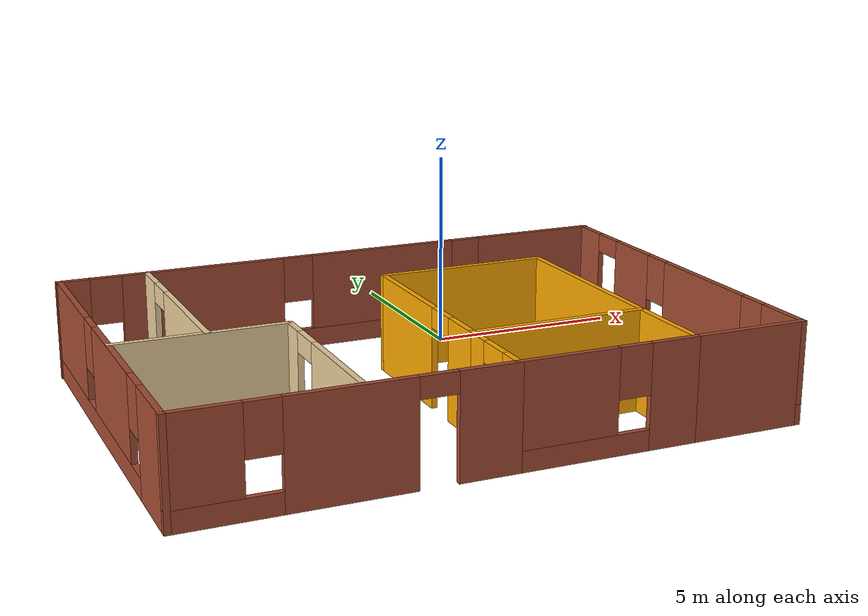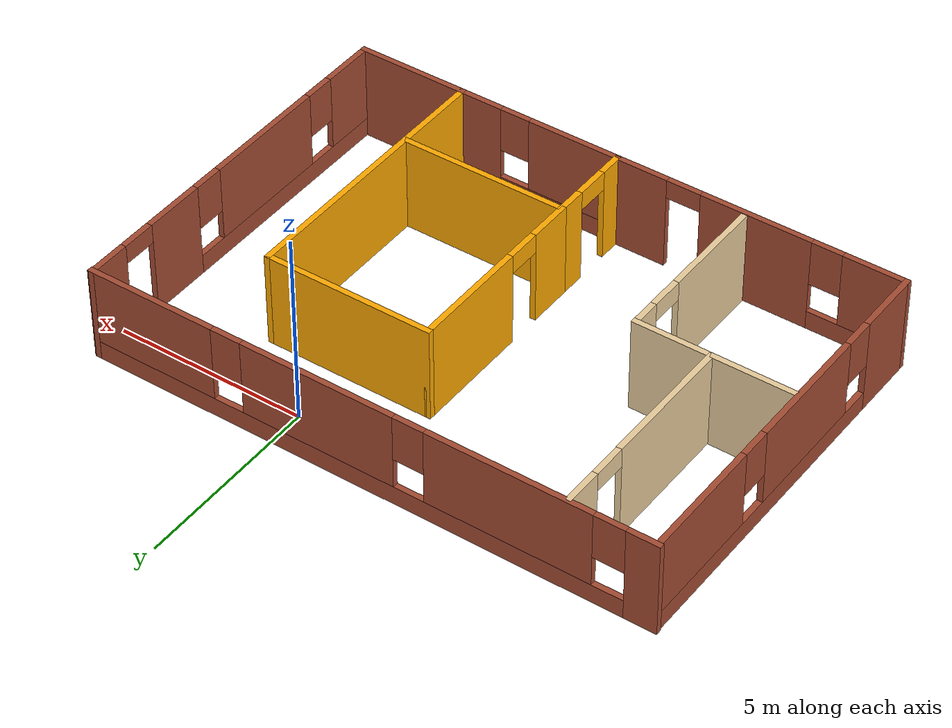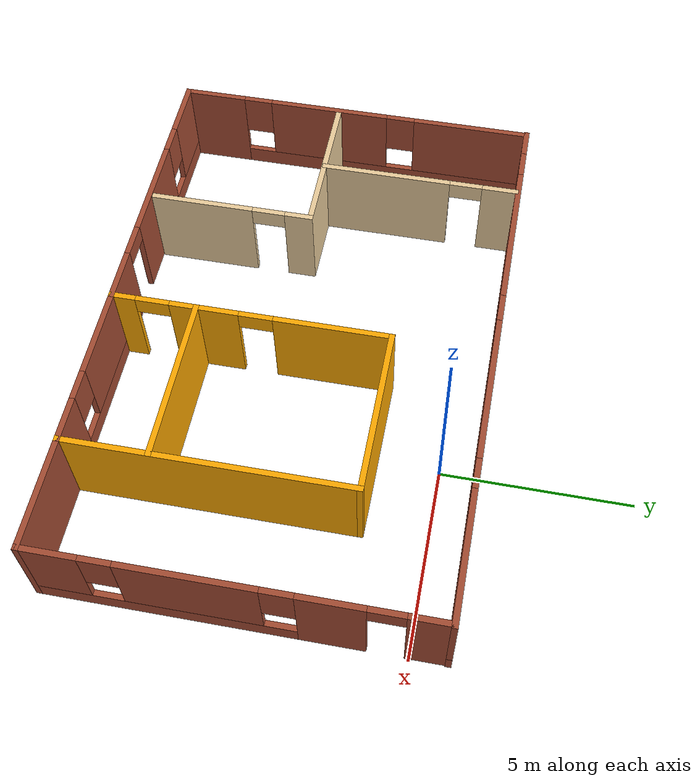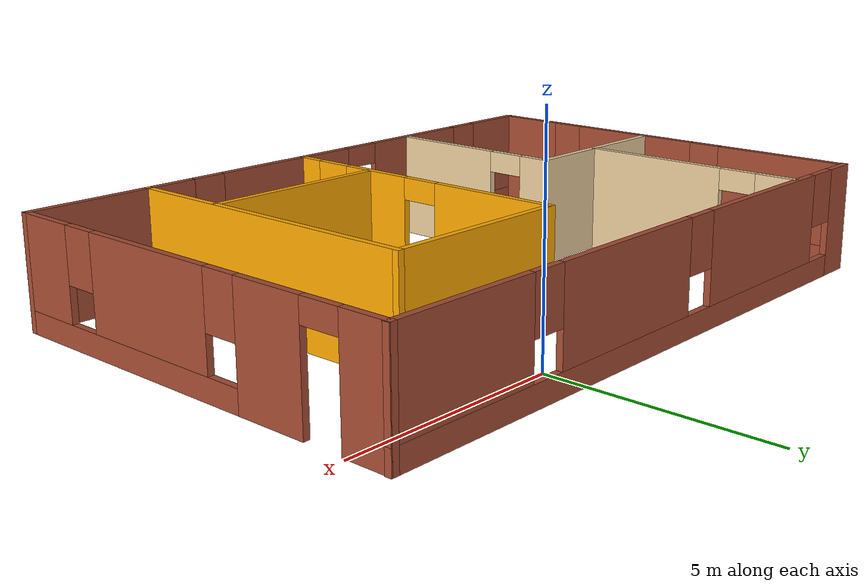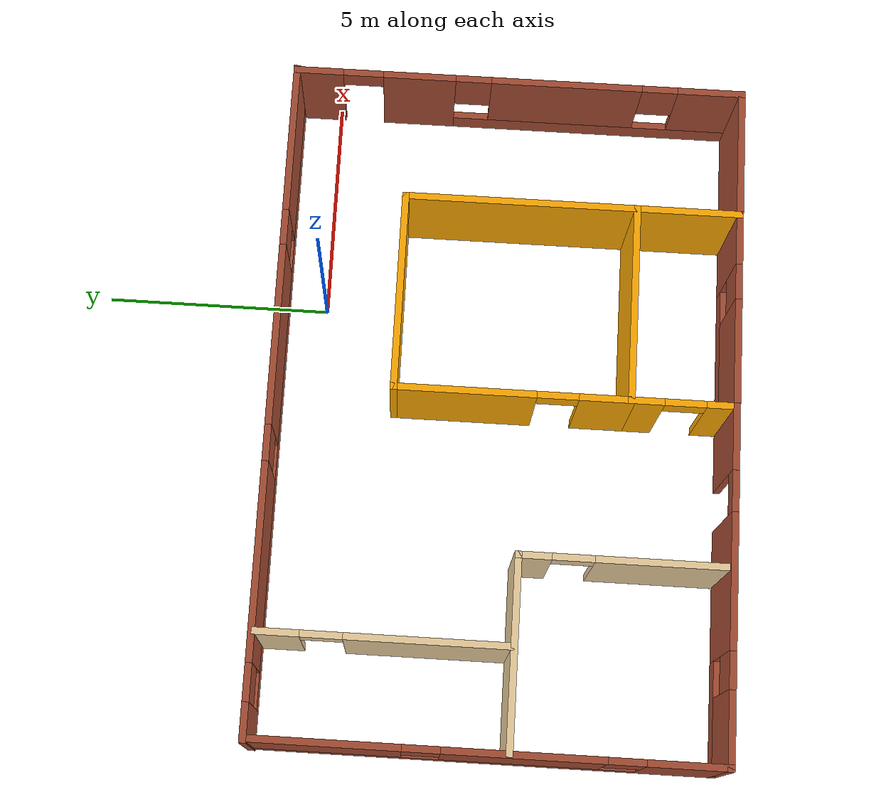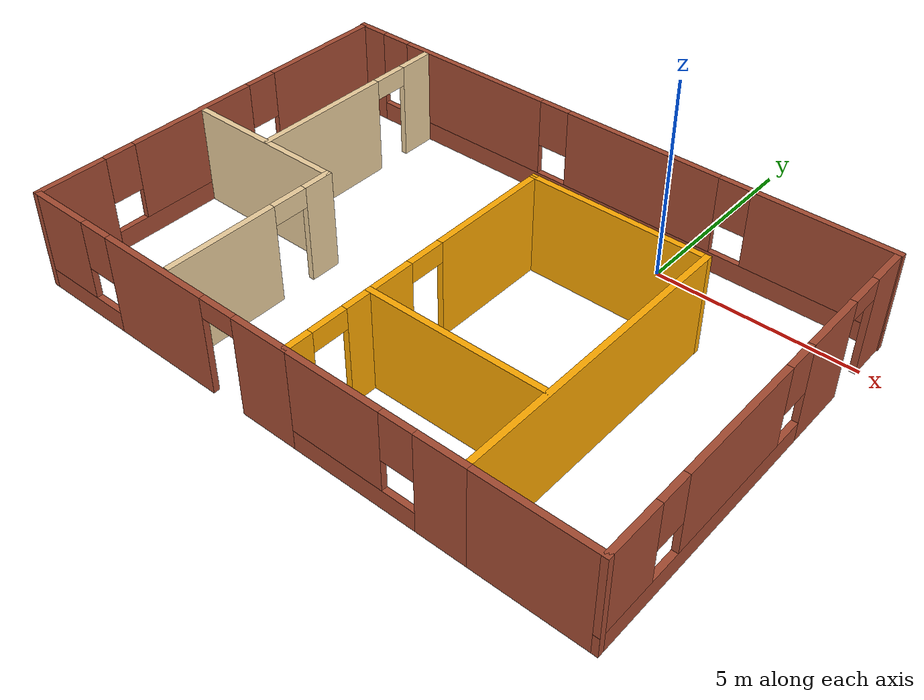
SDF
<?xml version='1.0'?>
<sdf version='1.6'>
  <model name='Building'>
    <pose frame=''>-2.5277 -4.04694 0 0 -0 0</pose>
    <link name='Wall_0'>
      <pose frame=''>0 4.98061 0 0 -0 0</pose>
      <visual name='Wall_0_Visual_0'>
        <pose frame=''>-7.08254 0 1.25 0 -0 0</pose>
        <geometry>
          <box>
            <size>0.834931 0.15 2.5</size>
          </box>
        </geometry>
        <material>
          <script>
            <uri>file://media/materials/scripts/gazebo.material</uri>
            <name>Gazebo/Bricks</name>
          </script>
          <ambient>1 1 1 1</ambient>
        </material>
        <meta>
          <layer>0</layer>
        </meta>
      </visual>
      <collision name='Wall_0_Collision_0'>
        <geometry>
          <box>
            <size>0.834931 0.15 2.5</size>
          </box>
        </geometry>
        <pose frame=''>-7.08254 0 1.25 0 -0 0</pose>
      </collision>
      <visual name='Wall_0_Visual_1'>
        <pose frame=''>0.417465 0 0.25 0 -0 0</pose>
        <geometry>
          <box>
            <size>14.1651 0.15 0.5</size>
          </box>
        </geometry>
        <material>
          <script>
            <uri>file://media/materials/scripts/gazebo.material</uri>
            <name>Gazebo/Bricks</name>
          </script>
          <ambient>1 1 1 1</ambient>
        </material>
        <meta>
          <layer>0</layer>
        </meta>
      </visual>
      <collision name='Wall_0_Collision_1'>
        <geometry>
          <box>
            <size>14.1651 0.15 0.5</size>
          </box>
        </geometry>
        <pose frame=''>0.417465 0 0.25 0 -0 0</pose>
      </collision>
      <visual name='Wall_0_Visual_2'>
        <pose frame=''>-3.73227 0 1.5 0 -0 0</pose>
        <geometry>
          <box>
            <size>4.2656 0.15 2</size>
          </box>
        </geometry>
        <material>
          <script>
            <uri>file://media/materials/scripts/gazebo.material</uri>
            <name>Gazebo/Bricks</name>
          </script>
          <ambient>1 1 1 1</ambient>
        </material>
        <meta>
          <layer>0</layer>
        </meta>
      </visual>
      <collision name='Wall_0_Collision_2'>
        <geometry>
          <box>
            <size>4.2656 0.15 2</size>
          </box>
        </geometry>
        <pose frame=''>-3.73227 0 1.5 0 -0 0</pose>
      </collision>
      <visual name='Wall_0_Visual_3'>
        <pose frame=''>1.22925 0 1.5 0 -0 0</pose>
        <geometry>
          <box>
            <size>4.05743 0.15 2</size>
          </box>
        </geometry>
        <material>
          <script>
            <uri>file://media/materials/scripts/gazebo.material</uri>
            <name>Gazebo/Bricks</name>
          </script>
          <ambient>1 1 1 1</ambient>
        </material>
        <meta>
          <layer>0</layer>
        </meta>
      </visual>
      <collision name='Wall_0_Collision_3'>
        <geometry>
          <box>
            <size>4.05743 0.15 2</size>
          </box>
        </geometry>
        <pose frame=''>1.22925 0 1.5 0 -0 0</pose>
      </collision>
      <visual name='Wall_0_Visual_4'>
        <pose frame=''>5.77898 0 1.5 0 -0 0</pose>
        <geometry>
          <box>
            <size>3.44204 0.15 2</size>
          </box>
        </geometry>
        <material>
          <script>
            <uri>file://media/materials/scripts/gazebo.material</uri>
            <name>Gazebo/Bricks</name>
          </script>
          <ambient>1 1 1 1</ambient>
        </material>
        <meta>
          <layer>0</layer>
        </meta>
      </visual>
      <collision name='Wall_0_Collision_4'>
        <geometry>
          <box>
            <size>3.44204 0.15 2</size>
          </box>
        </geometry>
        <pose frame=''>5.77898 0 1.5 0 -0 0</pose>
      </collision>
      <visual name='Wall_0_Visual_5'>
        <pose frame=''>-6.26507 0 1.9 0 -0 0</pose>
        <geometry>
          <box>
            <size>0.8 0.15 1.2</size>
          </box>
        </geometry>
        <material>
          <script>
            <uri>file://media/materials/scripts/gazebo.material</uri>
            <name>Gazebo/Bricks</name>
          </script>
          <ambient>1 1 1 1</ambient>
        </material>
        <meta>
          <layer>0</layer>
        </meta>
      </visual>
      <collision name='Wall_0_Collision_5'>
        <geometry>
          <box>
            <size>0.8 0.15 1.2</size>
          </box>
        </geometry>
        <pose frame=''>-6.26507 0 1.9 0 -0 0</pose>
      </collision>
      <visual name='Wall_0_Visual_6'>
        <pose frame=''>-1.19947 0 1.9 0 -0 0</pose>
        <geometry>
          <box>
            <size>0.8 0.15 1.2</size>
          </box>
        </geometry>
        <material>
          <script>
            <uri>file://media/materials/scripts/gazebo.material</uri>
            <name>Gazebo/Bricks</name>
          </script>
          <ambient>1 1 1 1</ambient>
        </material>
        <meta>
          <layer>0</layer>
        </meta>
      </visual>
      <collision name='Wall_0_Collision_6'>
        <geometry>
          <box>
            <size>0.8 0.15 1.2</size>
          </box>
        </geometry>
        <pose frame=''>-1.19947 0 1.9 0 -0 0</pose>
      </collision>
      <visual name='Wall_0_Visual_7'>
        <pose frame=''>3.65796 0 1.9 0 -0 0</pose>
        <geometry>
          <box>
            <size>0.8 0.15 1.2</size>
          </box>
        </geometry>
        <material>
          <script>
            <uri>file://media/materials/scripts/gazebo.material</uri>
            <name>Gazebo/Bricks</name>
          </script>
          <ambient>1 1 1 1</ambient>
        </material>
        <meta>
          <layer>0</layer>
        </meta>
      </visual>
      <collision name='Wall_0_Collision_7'>
        <geometry>
          <box>
            <size>0.8 0.15 1.2</size>
          </box>
        </geometry>
        <pose frame=''>3.65796 0 1.9 0 -0 0</pose>
      </collision>
    </link>
    <link name='Wall_11'>
      <pose frame=''>2.37687 -4.98061 0 0 -0 3.14159</pose>
      <visual name='Wall_11_Visual_0'>
        <pose frame=''>-1.64172 0 1.25 0 -0 0</pose>
        <geometry>
          <box>
            <size>1.21656 0.15 2.5</size>
          </box>
        </geometry>
        <material>
          <script>
            <uri>file://media/materials/scripts/gazebo.material</uri>
            <name>Gazebo/Bricks</name>
          </script>
          <ambient>1 1 1 1</ambient>
        </material>
        <meta>
          <layer>0</layer>
        </meta>
      </visual>
      <collision name='Wall_11_Collision_0'>
        <geometry>
          <box>
            <size>1.21656 0.15 2.5</size>
          </box>
        </geometry>
        <pose frame=''>-1.64172 0 1.25 0 -0 0</pose>
      </collision>
      <visual name='Wall_11_Visual_1'>
        <pose frame=''>0.608283 0 0.25 0 -0 0</pose>
        <geometry>
          <box>
            <size>3.28343 0.15 0.5</size>
          </box>
        </geometry>
        <material>
          <script>
            <uri>file://media/materials/scripts/gazebo.material</uri>
            <name>Gazebo/Bricks</name>
          </script>
          <ambient>1 1 1 1</ambient>
        </material>
        <meta>
          <layer>0</layer>
        </meta>
      </visual>
      <collision name='Wall_11_Collision_1'>
        <geometry>
          <box>
            <size>3.28343 0.15 0.5</size>
          </box>
        </geometry>
        <pose frame=''>0.608283 0 0.25 0 -0 0</pose>
      </collision>
      <visual name='Wall_11_Visual_2'>
        <pose frame=''>1.00828 0 1.5 0 -0 0</pose>
        <geometry>
          <box>
            <size>2.48344 0.15 2</size>
          </box>
        </geometry>
        <material>
          <script>
            <uri>file://media/materials/scripts/gazebo.material</uri>
            <name>Gazebo/Bricks</name>
          </script>
          <ambient>1 1 1 1</ambient>
        </material>
        <meta>
          <layer>0</layer>
        </meta>
      </visual>
      <collision name='Wall_11_Collision_2'>
        <geometry>
          <box>
            <size>2.48344 0.15 2</size>
          </box>
        </geometry>
        <pose frame=''>1.00828 0 1.5 0 -0 0</pose>
      </collision>
      <visual name='Wall_11_Visual_3'>
        <pose frame=''>-0.633435 0 1.9 0 -0 0</pose>
        <geometry>
          <box>
            <size>0.8 0.15 1.2</size>
          </box>
        </geometry>
        <material>
          <script>
            <uri>file://media/materials/scripts/gazebo.material</uri>
            <name>Gazebo/Bricks</name>
          </script>
          <ambient>1 1 1 1</ambient>
        </material>
        <meta>
          <layer>0</layer>
        </meta>
      </visual>
      <collision name='Wall_11_Collision_3'>
        <geometry>
          <box>
            <size>0.8 0.15 1.2</size>
          </box>
        </geometry>
        <pose frame=''>-0.633435 0 1.9 0 -0 0</pose>
      </collision>
    </link>
    <link name='Wall_12'>
      <pose frame=''>0.20187 -3.85561 0 0 -0 1.5708</pose>
      <visual name='Wall_12_Visual_0'>
        <pose frame=''>-0.842266 0 1.25 0 -0 0</pose>
        <geometry>
          <box>
            <size>0.715469 0.15 2.5</size>
          </box>
        </geometry>
        <material>
          <script>
            <uri>file://media/materials/scripts/gazebo.material</uri>
            <name>Gazebo/Grey</name>
          </script>
          <ambient>1 0.666667 0 1</ambient>
        </material>
        <meta>
          <layer>0</layer>
        </meta>
      </visual>
      <collision name='Wall_12_Collision_0'>
        <geometry>
          <box>
            <size>0.715469 0.15 2.5</size>
          </box>
        </geometry>
        <pose frame=''>-0.842266 0 1.25 0 -0 0</pose>
      </collision>
      <visual name='Wall_12_Visual_1'>
        <pose frame=''>0.807734 0 1.25 0 -0 0</pose>
        <geometry>
          <box>
            <size>0.784531 0.15 2.5</size>
          </box>
        </geometry>
        <material>
          <script>
            <uri>file://media/materials/scripts/gazebo.material</uri>
            <name>Gazebo/Grey</name>
          </script>
          <ambient>1 0.666667 0 1</ambient>
        </material>
        <meta>
          <layer>0</layer>
        </meta>
      </visual>
      <collision name='Wall_12_Collision_1'>
        <geometry>
          <box>
            <size>0.784531 0.15 2.5</size>
          </box>
        </geometry>
        <pose frame=''>0.807734 0 1.25 0 -0 0</pose>
      </collision>
      <visual name='Wall_12_Visual_2'>
        <pose frame=''>-0.034531 0 2.25 0 -0 0</pose>
        <geometry>
          <box>
            <size>0.9 0.15 0.5</size>
          </box>
        </geometry>
        <material>
          <script>
            <uri>file://media/materials/scripts/gazebo.material</uri>
            <name>Gazebo/Grey</name>
          </script>
          <ambient>1 0.666667 0 1</ambient>
        </material>
        <meta>
          <layer>0</layer>
        </meta>
      </visual>
      <collision name='Wall_12_Collision_2'>
        <geometry>
          <box>
            <size>0.9 0.15 0.5</size>
          </box>
        </geometry>
        <pose frame=''>-0.034531 0 2.25 0 -0 0</pose>
      </collision>
    </link>
    <link name='Wall_14'>
      <pose frame=''>-3.59813 -4.98061 0 0 -0 3.14159</pose>
      <visual name='Wall_14_Visual_0'>
        <pose frame=''>-3.14209 0 1.25 0 -0 0</pose>
        <geometry>
          <box>
            <size>1.46582 0.15 2.5</size>
          </box>
        </geometry>
        <material>
          <script>
            <uri>file://media/materials/scripts/gazebo.material</uri>
            <name>Gazebo/Bricks</name>
          </script>
          <ambient>1 1 1 1</ambient>
        </material>
        <meta>
          <layer>0</layer>
        </meta>
      </visual>
      <collision name='Wall_14_Collision_0'>
        <geometry>
          <box>
            <size>1.46582 0.15 2.5</size>
          </box>
        </geometry>
        <pose frame=''>-3.14209 0 1.25 0 -0 0</pose>
      </collision>
      <visual name='Wall_14_Visual_1'>
        <pose frame=''>-0.049038 0 1.25 0 -0 0</pose>
        <geometry>
          <box>
            <size>2.92029 0.15 2.5</size>
          </box>
        </geometry>
        <material>
          <script>
            <uri>file://media/materials/scripts/gazebo.material</uri>
            <name>Gazebo/Bricks</name>
          </script>
          <ambient>1 1 1 1</ambient>
        </material>
        <meta>
          <layer>0</layer>
        </meta>
      </visual>
      <collision name='Wall_14_Collision_1'>
        <geometry>
          <box>
            <size>2.92029 0.15 2.5</size>
          </box>
        </geometry>
        <pose frame=''>-0.049038 0 1.25 0 -0 0</pose>
      </collision>
      <visual name='Wall_14_Visual_2'>
        <pose frame=''>2.64305 0 0.25 0 -0 0</pose>
        <geometry>
          <box>
            <size>2.46389 0.15 0.5</size>
          </box>
        </geometry>
        <material>
          <script>
            <uri>file://media/materials/scripts/gazebo.material</uri>
            <name>Gazebo/Bricks</name>
          </script>
          <ambient>1 1 1 1</ambient>
        </material>
        <meta>
          <layer>0</layer>
        </meta>
      </visual>
      <collision name='Wall_14_Collision_2'>
        <geometry>
          <box>
            <size>2.46389 0.15 0.5</size>
          </box>
        </geometry>
        <pose frame=''>2.64305 0 0.25 0 -0 0</pose>
      </collision>
      <visual name='Wall_14_Visual_3'>
        <pose frame=''>3.04305 0 1.5 0 -0 0</pose>
        <geometry>
          <box>
            <size>1.66389 0.15 2</size>
          </box>
        </geometry>
        <material>
          <script>
            <uri>file://media/materials/scripts/gazebo.material</uri>
            <name>Gazebo/Bricks</name>
          </script>
          <ambient>1 1 1 1</ambient>
        </material>
        <meta>
          <layer>0</layer>
        </meta>
      </visual>
      <collision name='Wall_14_Collision_3'>
        <geometry>
          <box>
            <size>1.66389 0.15 2</size>
          </box>
        </geometry>
        <pose frame=''>3.04305 0 1.5 0 -0 0</pose>
      </collision>
      <visual name='Wall_14_Visual_4'>
        <pose frame=''>1.81111 0 1.9 0 -0 0</pose>
        <geometry>
          <box>
            <size>0.8 0.15 1.2</size>
          </box>
        </geometry>
        <material>
          <script>
            <uri>file://media/materials/scripts/gazebo.material</uri>
            <name>Gazebo/Bricks</name>
          </script>
          <ambient>1 1 1 1</ambient>
        </material>
        <meta>
          <layer>0</layer>
        </meta>
      </visual>
      <collision name='Wall_14_Collision_4'>
        <geometry>
          <box>
            <size>0.8 0.15 1.2</size>
          </box>
        </geometry>
        <pose frame=''>1.81111 0 1.9 0 -0 0</pose>
      </collision>
      <visual name='Wall_14_Visual_5'>
        <pose frame=''>-1.95918 0 2.25 0 -0 0</pose>
        <geometry>
          <box>
            <size>0.9 0.15 0.5</size>
          </box>
        </geometry>
        <material>
          <script>
            <uri>file://media/materials/scripts/gazebo.material</uri>
            <name>Gazebo/Bricks</name>
          </script>
          <ambient>1 1 1 1</ambient>
        </material>
        <meta>
          <layer>0</layer>
        </meta>
      </visual>
      <collision name='Wall_14_Collision_5'>
        <geometry>
          <box>
            <size>0.9 0.15 0.5</size>
          </box>
        </geometry>
        <pose frame=''>-1.95918 0 2.25 0 -0 0</pose>
      </collision>
    </link>
    <link name='Wall_15'>
      <pose frame=''>-7.39813 -0.055609 0 0 -0 1.5708</pose>
      <visual name='Wall_15_Visual_0'>
        <pose frame=''>-4.10839 0 1.25 0 -0 0</pose>
        <geometry>
          <box>
            <size>1.78322 0.15 2.5</size>
          </box>
        </geometry>
        <material>
          <script>
            <uri>file://media/materials/scripts/gazebo.material</uri>
            <name>Gazebo/Bricks</name>
          </script>
          <ambient>1 1 1 1</ambient>
        </material>
        <meta>
          <layer>0</layer>
        </meta>
      </visual>
      <collision name='Wall_15_Collision_0'>
        <geometry>
          <box>
            <size>1.78322 0.15 2.5</size>
          </box>
        </geometry>
        <pose frame=''>-4.10839 0 1.25 0 -0 0</pose>
      </collision>
      <visual name='Wall_15_Visual_1'>
        <pose frame=''>0.891608 0 0.25 0 -0 0</pose>
        <geometry>
          <box>
            <size>8.21678 0.15 0.5</size>
          </box>
        </geometry>
        <material>
          <script>
            <uri>file://media/materials/scripts/gazebo.material</uri>
            <name>Gazebo/Bricks</name>
          </script>
          <ambient>1 1 1 1</ambient>
        </material>
        <meta>
          <layer>0</layer>
        </meta>
      </visual>
      <collision name='Wall_15_Collision_1'>
        <geometry>
          <box>
            <size>8.21678 0.15 0.5</size>
          </box>
        </geometry>
        <pose frame=''>0.891608 0 0.25 0 -0 0</pose>
      </collision>
      <visual name='Wall_15_Visual_2'>
        <pose frame=''>-0.711899 0 1.5 0 -0 0</pose>
        <geometry>
          <box>
            <size>3.40977 0.15 2</size>
          </box>
        </geometry>
        <material>
          <script>
            <uri>file://media/materials/scripts/gazebo.material</uri>
            <name>Gazebo/Bricks</name>
          </script>
          <ambient>1 1 1 1</ambient>
        </material>
        <meta>
          <layer>0</layer>
        </meta>
      </visual>
      <collision name='Wall_15_Collision_2'>
        <geometry>
          <box>
            <size>3.40977 0.15 2</size>
          </box>
        </geometry>
        <pose frame=''>-0.711899 0 1.5 0 -0 0</pose>
      </collision>
      <visual name='Wall_15_Visual_3'>
        <pose frame=''>3.39649 0 1.5 0 -0 0</pose>
        <geometry>
          <box>
            <size>3.20701 0.15 2</size>
          </box>
        </geometry>
        <material>
          <script>
            <uri>file://media/materials/scripts/gazebo.material</uri>
            <name>Gazebo/Bricks</name>
          </script>
          <ambient>1 1 1 1</ambient>
        </material>
        <meta>
          <layer>0</layer>
        </meta>
      </visual>
      <collision name='Wall_15_Collision_3'>
        <geometry>
          <box>
            <size>3.20701 0.15 2</size>
          </box>
        </geometry>
        <pose frame=''>3.39649 0 1.5 0 -0 0</pose>
      </collision>
      <visual name='Wall_15_Visual_4'>
        <pose frame=''>-2.81678 0 1.9 0 -0 0</pose>
        <geometry>
          <box>
            <size>0.8 0.15 1.2</size>
          </box>
        </geometry>
        <material>
          <script>
            <uri>file://media/materials/scripts/gazebo.material</uri>
            <name>Gazebo/Bricks</name>
          </script>
          <ambient>1 1 1 1</ambient>
        </material>
        <meta>
          <layer>0</layer>
        </meta>
      </visual>
      <collision name='Wall_15_Collision_4'>
        <geometry>
          <box>
            <size>0.8 0.15 1.2</size>
          </box>
        </geometry>
        <pose frame=''>-2.81678 0 1.9 0 -0 0</pose>
      </collision>
      <visual name='Wall_15_Visual_5'>
        <pose frame=''>1.39299 0 1.9 0 -0 0</pose>
        <geometry>
          <box>
            <size>0.8 0.15 1.2</size>
          </box>
        </geometry>
        <material>
          <script>
            <uri>file://media/materials/scripts/gazebo.material</uri>
            <name>Gazebo/Bricks</name>
          </script>
          <ambient>1 1 1 1</ambient>
        </material>
        <meta>
          <layer>0</layer>
        </meta>
      </visual>
      <collision name='Wall_15_Collision_5'>
        <geometry>
          <box>
            <size>0.8 0.15 1.2</size>
          </box>
        </geometry>
        <pose frame=''>1.39299 0 1.9 0 -0 0</pose>
      </collision>
    </link>
    <link name='Wall_17'>
      <collision name='Wall_17_Collision'>
        <geometry>
          <box>
            <size>4.25 0.15 2.5</size>
          </box>
        </geometry>
        <pose frame=''>0 0 1.25 0 -0 0</pose>
      </collision>
      <visual name='Wall_17_Visual'>
        <pose frame=''>0 0 1.25 0 -0 0</pose>
        <geometry>
          <box>
            <size>4.25 0.15 2.5</size>
          </box>
        </geometry>
        <material>
          <script>
            <uri>file://media/materials/scripts/gazebo.material</uri>
            <name>Gazebo/Grey</name>
          </script>
          <ambient>0.921569 0.807843 0.615686 1</ambient>
        </material>
        <meta>
          <layer>0</layer>
        </meta>
      </visual>
      <pose frame=''>-5.32534 -0.46681 0 0 -0 0</pose>
    </link>
    <link name='Wall_18'>
      <pose frame=''>-3.27534 -2.64181 0 0 0 -1.5708</pose>
      <visual name='Wall_18_Visual_0'>
        <pose frame=''>-1.85923 0 1.25 0 -0 0</pose>
        <geometry>
          <box>
            <size>0.78153 0.15 2.5</size>
          </box>
        </geometry>
        <material>
          <script>
            <uri>file://media/materials/scripts/gazebo.material</uri>
            <name>Gazebo/Grey</name>
          </script>
          <ambient>0.921569 0.807843 0.615686 1</ambient>
        </material>
        <meta>
          <layer>0</layer>
        </meta>
      </visual>
      <collision name='Wall_18_Collision_0'>
        <geometry>
          <box>
            <size>0.78153 0.15 2.5</size>
          </box>
        </geometry>
        <pose frame=''>-1.85923 0 1.25 0 -0 0</pose>
      </collision>
      <visual name='Wall_18_Visual_1'>
        <pose frame=''>0.840765 0 1.25 0 -0 0</pose>
        <geometry>
          <box>
            <size>2.81847 0.15 2.5</size>
          </box>
        </geometry>
        <material>
          <script>
            <uri>file://media/materials/scripts/gazebo.material</uri>
            <name>Gazebo/Grey</name>
          </script>
          <ambient>0.921569 0.807843 0.615686 1</ambient>
        </material>
        <meta>
          <layer>0</layer>
        </meta>
      </visual>
      <collision name='Wall_18_Collision_1'>
        <geometry>
          <box>
            <size>2.81847 0.15 2.5</size>
          </box>
        </geometry>
        <pose frame=''>0.840765 0 1.25 0 -0 0</pose>
      </collision>
      <visual name='Wall_18_Visual_2'>
        <pose frame=''>-1.01847 0 2.25 0 -0 0</pose>
        <geometry>
          <box>
            <size>0.9 0.15 0.5</size>
          </box>
        </geometry>
        <material>
          <script>
            <uri>file://media/materials/scripts/gazebo.material</uri>
            <name>Gazebo/Grey</name>
          </script>
          <ambient>0.921569 0.807843 0.615686 1</ambient>
        </material>
        <meta>
          <layer>0</layer>
        </meta>
      </visual>
      <collision name='Wall_18_Collision_2'>
        <geometry>
          <box>
            <size>0.9 0.15 0.5</size>
          </box>
        </geometry>
        <pose frame=''>-1.01847 0 2.25 0 -0 0</pose>
      </collision>
    </link>
    <link name='Wall_20'>
      <pose frame=''>-5.20106 2.23132 0 0 -0 1.5708</pose>
      <visual name='Wall_20_Visual_0'>
        <pose frame=''>-0.948268 0 1.25 0 -0 0</pose>
        <geometry>
          <box>
            <size>3.60346 0.15 2.5</size>
          </box>
        </geometry>
        <material>
          <script>
            <uri>file://media/materials/scripts/gazebo.material</uri>
            <name>Gazebo/Grey</name>
          </script>
          <ambient>0.921569 0.807843 0.615686 1</ambient>
        </material>
        <meta>
          <layer>0</layer>
        </meta>
      </visual>
      <collision name='Wall_20_Collision_0'>
        <geometry>
          <box>
            <size>3.60346 0.15 2.5</size>
          </box>
        </geometry>
        <pose frame=''>-0.948268 0 1.25 0 -0 0</pose>
      </collision>
      <visual name='Wall_20_Visual_1'>
        <pose frame=''>2.25173 0 1.25 0 -0 0</pose>
        <geometry>
          <box>
            <size>0.996535 0.15 2.5</size>
          </box>
        </geometry>
        <material>
          <script>
            <uri>file://media/materials/scripts/gazebo.material</uri>
            <name>Gazebo/Grey</name>
          </script>
          <ambient>0.921569 0.807843 0.615686 1</ambient>
        </material>
        <meta>
          <layer>0</layer>
        </meta>
      </visual>
      <collision name='Wall_20_Collision_1'>
        <geometry>
          <box>
            <size>0.996535 0.15 2.5</size>
          </box>
        </geometry>
        <pose frame=''>2.25173 0 1.25 0 -0 0</pose>
      </collision>
      <visual name='Wall_20_Visual_2'>
        <pose frame=''>1.30347 0 2.25 0 -0 0</pose>
        <geometry>
          <box>
            <size>0.9 0.15 0.5</size>
          </box>
        </geometry>
        <material>
          <script>
            <uri>file://media/materials/scripts/gazebo.material</uri>
            <name>Gazebo/Grey</name>
          </script>
          <ambient>0.921569 0.807843 0.615686 1</ambient>
        </material>
        <meta>
          <layer>0</layer>
        </meta>
      </visual>
      <collision name='Wall_20_Collision_2'>
        <geometry>
          <box>
            <size>0.9 0.15 0.5</size>
          </box>
        </geometry>
        <pose frame=''>1.30347 0 2.25 0 -0 0</pose>
      </collision>
    </link>
    <link name='Wall_3'>
      <pose frame=''>7.40187 0 0 0 0 -1.5708</pose>
      <visual name='Wall_3_Visual_0'>
        <pose frame=''>-4.49731 0 1.25 0 -0 0</pose>
        <geometry>
          <box>
            <size>1.11757 0.15 2.5</size>
          </box>
        </geometry>
        <material>
          <script>
            <uri>file://media/materials/scripts/gazebo.material</uri>
            <name>Gazebo/Bricks</name>
          </script>
          <ambient>1 1 1 1</ambient>
        </material>
        <meta>
          <layer>0</layer>
        </meta>
      </visual>
      <collision name='Wall_3_Collision_0'>
        <geometry>
          <box>
            <size>1.11757 0.15 2.5</size>
          </box>
        </geometry>
        <pose frame=''>-4.49731 0 1.25 0 -0 0</pose>
      </collision>
      <visual name='Wall_3_Visual_1'>
        <pose frame=''>-2.22604 0 1.25 0 -0 0</pose>
        <geometry>
          <box>
            <size>1.62498 0.15 2.5</size>
          </box>
        </geometry>
        <material>
          <script>
            <uri>file://media/materials/scripts/gazebo.material</uri>
            <name>Gazebo/Bricks</name>
          </script>
          <ambient>1 1 1 1</ambient>
        </material>
        <meta>
          <layer>0</layer>
        </meta>
      </visual>
      <collision name='Wall_3_Collision_1'>
        <geometry>
          <box>
            <size>1.62498 0.15 2.5</size>
          </box>
        </geometry>
        <pose frame=''>-2.22604 0 1.25 0 -0 0</pose>
      </collision>
      <visual name='Wall_3_Visual_2'>
        <pose frame=''>1.82127 0 0.25 0 -0 0</pose>
        <geometry>
          <box>
            <size>6.46964 0.15 0.5</size>
          </box>
        </geometry>
        <material>
          <script>
            <uri>file://media/materials/scripts/gazebo.material</uri>
            <name>Gazebo/Bricks</name>
          </script>
          <ambient>1 1 1 1</ambient>
        </material>
        <meta>
          <layer>0</layer>
        </meta>
      </visual>
      <collision name='Wall_3_Collision_2'>
        <geometry>
          <box>
            <size>6.46964 0.15 0.5</size>
          </box>
        </geometry>
        <pose frame=''>1.82127 0 0.25 0 -0 0</pose>
      </collision>
      <visual name='Wall_3_Visual_3'>
        <pose frame=''>1.06821 0 1.5 0 -0 0</pose>
        <geometry>
          <box>
            <size>3.36351 0.15 2</size>
          </box>
        </geometry>
        <material>
          <script>
            <uri>file://media/materials/scripts/gazebo.material</uri>
            <name>Gazebo/Bricks</name>
          </script>
          <ambient>1 1 1 1</ambient>
        </material>
        <meta>
          <layer>0</layer>
        </meta>
      </visual>
      <collision name='Wall_3_Collision_3'>
        <geometry>
          <box>
            <size>3.36351 0.15 2</size>
          </box>
        </geometry>
        <pose frame=''>1.06821 0 1.5 0 -0 0</pose>
      </collision>
      <visual name='Wall_3_Visual_4'>
        <pose frame=''>4.30303 0 1.5 0 -0 0</pose>
        <geometry>
          <box>
            <size>1.50613 0.15 2</size>
          </box>
        </geometry>
        <material>
          <script>
            <uri>file://media/materials/scripts/gazebo.material</uri>
            <name>Gazebo/Bricks</name>
          </script>
          <ambient>1 1 1 1</ambient>
        </material>
        <meta>
          <layer>0</layer>
        </meta>
      </visual>
      <collision name='Wall_3_Collision_4'>
        <geometry>
          <box>
            <size>1.50613 0.15 2</size>
          </box>
        </geometry>
        <pose frame=''>4.30303 0 1.5 0 -0 0</pose>
      </collision>
      <visual name='Wall_3_Visual_5'>
        <pose frame=''>-1.01355 0 1.9 0 -0 0</pose>
        <geometry>
          <box>
            <size>0.8 0.15 1.2</size>
          </box>
        </geometry>
        <material>
          <script>
            <uri>file://media/materials/scripts/gazebo.material</uri>
            <name>Gazebo/Bricks</name>
          </script>
          <ambient>1 1 1 1</ambient>
        </material>
        <meta>
          <layer>0</layer>
        </meta>
      </visual>
      <collision name='Wall_3_Collision_5'>
        <geometry>
          <box>
            <size>0.8 0.15 1.2</size>
          </box>
        </geometry>
        <pose frame=''>-1.01355 0 1.9 0 -0 0</pose>
      </collision>
      <visual name='Wall_3_Visual_6'>
        <pose frame=''>3.14996 0 1.9 0 -0 0</pose>
        <geometry>
          <box>
            <size>0.8 0.15 1.2</size>
          </box>
        </geometry>
        <material>
          <script>
            <uri>file://media/materials/scripts/gazebo.material</uri>
            <name>Gazebo/Bricks</name>
          </script>
          <ambient>1 1 1 1</ambient>
        </material>
        <meta>
          <layer>0</layer>
        </meta>
      </visual>
      <collision name='Wall_3_Collision_6'>
        <geometry>
          <box>
            <size>0.8 0.15 1.2</size>
          </box>
        </geometry>
        <pose frame=''>3.14996 0 1.9 0 -0 0</pose>
      </collision>
      <visual name='Wall_3_Visual_7'>
        <pose frame=''>-3.48853 0 2.25 0 -0 0</pose>
        <geometry>
          <box>
            <size>0.9 0.15 0.5</size>
          </box>
        </geometry>
        <material>
          <script>
            <uri>file://media/materials/scripts/gazebo.material</uri>
            <name>Gazebo/Bricks</name>
          </script>
          <ambient>1 1 1 1</ambient>
        </material>
        <meta>
          <layer>0</layer>
        </meta>
      </visual>
      <collision name='Wall_3_Collision_7'>
        <geometry>
          <box>
            <size>0.9 0.15 0.5</size>
          </box>
        </geometry>
        <pose frame=''>-3.48853 0 2.25 0 -0 0</pose>
      </collision>
    </link>
    <link name='Wall_4'>
      <collision name='Wall_4_Collision'>
        <geometry>
          <box>
            <size>3 0.15 2.5</size>
          </box>
        </geometry>
        <pose frame=''>0 0 1.25 0 -0 0</pose>
      </collision>
      <visual name='Wall_4_Visual'>
        <pose frame=''>0 0 1.25 0 -0 0</pose>
        <geometry>
          <box>
            <size>3 0.15 2.5</size>
          </box>
        </geometry>
        <material>
          <script>
            <uri>file://media/materials/scripts/gazebo.material</uri>
            <name>Gazebo/Bricks</name>
          </script>
          <ambient>1 1 1 1</ambient>
        </material>
        <meta>
          <layer>0</layer>
        </meta>
      </visual>
      <pose frame=''>5.97687 -4.98061 0 0 -0 3.14159</pose>
    </link>
    <link name='Wall_6'>
      <collision name='Wall_6_Collision'>
        <geometry>
          <box>
            <size>7.5 0.15 2.5</size>
          </box>
        </geometry>
        <pose frame=''>0 0 1.25 0 -0 0</pose>
      </collision>
      <visual name='Wall_6_Visual'>
        <pose frame=''>0 0 1.25 0 -0 0</pose>
        <geometry>
          <box>
            <size>7.5 0.15 2.5</size>
          </box>
        </geometry>
        <material>
          <script>
            <uri>file://media/materials/scripts/gazebo.material</uri>
            <name>Gazebo/Grey</name>
          </script>
          <ambient>1 0.666667 0 1</ambient>
        </material>
        <meta>
          <layer>0</layer>
        </meta>
      </visual>
      <pose frame=''>4.55187 -1.30561 0 0 -0 1.5708</pose>
    </link>
    <link name='Wall_7'>
      <collision name='Wall_7_Collision'>
        <geometry>
          <box>
            <size>4.5 0.15 2.5</size>
          </box>
        </geometry>
        <pose frame=''>0 0 1.25 0 -0 0</pose>
      </collision>
      <visual name='Wall_7_Visual'>
        <pose frame=''>0 0 1.25 0 -0 0</pose>
        <geometry>
          <box>
            <size>4.5 0.15 2.5</size>
          </box>
        </geometry>
        <material>
          <script>
            <uri>file://media/materials/scripts/gazebo.material</uri>
            <name>Gazebo/Grey</name>
          </script>
          <ambient>1 0.666667 0 1</ambient>
        </material>
        <meta>
          <layer>0</layer>
        </meta>
      </visual>
      <pose frame=''>2.37687 2.36939 0 0 -0 3.14159</pose>
    </link>
    <link name='Wall_8'>
      <pose frame=''>0.20187 -0.180609 0 0 0 -1.5708</pose>
      <visual name='Wall_8_Visual_0'>
        <pose frame=''>-1.04744 0 1.25 0 -0 0</pose>
        <geometry>
          <box>
            <size>3.15512 0.15 2.5</size>
          </box>
        </geometry>
        <material>
          <script>
            <uri>file://media/materials/scripts/gazebo.material</uri>
            <name>Gazebo/Grey</name>
          </script>
          <ambient>1 0.666667 0 1</ambient>
        </material>
        <meta>
          <layer>0</layer>
        </meta>
      </visual>
      <collision name='Wall_8_Collision_0'>
        <geometry>
          <box>
            <size>3.15512 0.15 2.5</size>
          </box>
        </geometry>
        <pose frame=''>-1.04744 0 1.25 0 -0 0</pose>
      </collision>
      <visual name='Wall_8_Visual_1'>
        <pose frame=''>2.02756 0 1.25 0 -0 0</pose>
        <geometry>
          <box>
            <size>1.19488 0.15 2.5</size>
          </box>
        </geometry>
        <material>
          <script>
            <uri>file://media/materials/scripts/gazebo.material</uri>
            <name>Gazebo/Grey</name>
          </script>
          <ambient>1 0.666667 0 1</ambient>
        </material>
        <meta>
          <layer>0</layer>
        </meta>
      </visual>
      <collision name='Wall_8_Collision_1'>
        <geometry>
          <box>
            <size>1.19488 0.15 2.5</size>
          </box>
        </geometry>
        <pose frame=''>2.02756 0 1.25 0 -0 0</pose>
      </collision>
      <visual name='Wall_8_Visual_2'>
        <pose frame=''>0.980119 0 2.25 0 -0 0</pose>
        <geometry>
          <box>
            <size>0.9 0.15 0.5</size>
          </box>
        </geometry>
        <material>
          <script>
            <uri>file://media/materials/scripts/gazebo.material</uri>
            <name>Gazebo/Grey</name>
          </script>
          <ambient>1 0.666667 0 1</ambient>
        </material>
        <meta>
          <layer>0</layer>
        </meta>
      </visual>
      <collision name='Wall_8_Collision_2'>
        <geometry>
          <box>
            <size>0.9 0.15 0.5</size>
          </box>
        </geometry>
        <pose frame=''>0.980119 0 2.25 0 -0 0</pose>
      </collision>
    </link>
    <link name='Wall_9'>
      <collision name='Wall_9_Collision'>
        <geometry>
          <box>
            <size>4.5 0.15 2.5</size>
          </box>
        </geometry>
        <pose frame=''>0 0 1.25 0 -0 0</pose>
      </collision>
      <visual name='Wall_9_Visual'>
        <pose frame=''>0 0 1.25 0 -0 0</pose>
        <geometry>
          <box>
            <size>4.5 0.15 2.5</size>
          </box>
        </geometry>
        <material>
          <script>
            <uri>file://media/materials/scripts/gazebo.material</uri>
            <name>Gazebo/Grey</name>
          </script>
          <ambient>1 0.666667 0 1</ambient>
        </material>
        <meta>
          <layer>0</layer>
        </meta>
      </visual>
      <pose frame=''>2.37687 -2.73061 0 0 -0 0</pose>
    </link>
    <static>1</static>
  </model>
</sdf>
